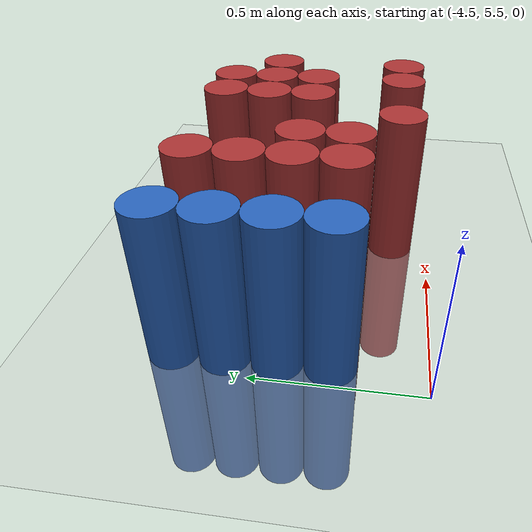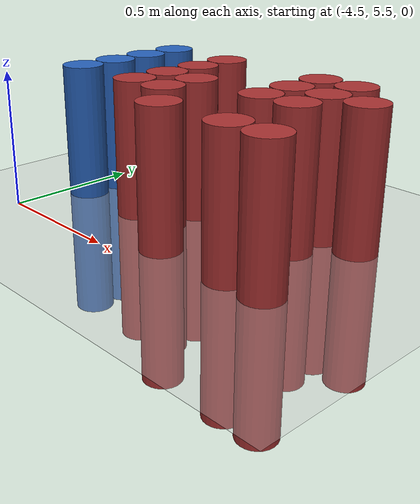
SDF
<sdf version="1.6">
 <world name="default">
  <model name="ground_plane">
   <static>1</static>
   <link name="link">
    <collision name="collision">
     <geometry><plane><normal>0 0 1</normal><size>100 100</size></plane></geometry>
     <surface><friction><ode><mu>100</mu><mu2>50</mu2></ode></friction></surface>
    </collision>
    <visual name="visual">
     <cast_shadows>0</cast_shadows>
     <geometry><plane><normal>0 0 1</normal><size>100 100</size></plane></geometry>
     <material>
      <script><uri>file://media/materials/scripts/gazebo.material</uri><name>Gazebo/Grey</name></script>
     </material>
    </visual>
   </link>
  </model>
  <model name="unit_cylinder_100">
   <static>1</static>
   <pose>-4.425000 5.775000 0.000000 0.000000 0.000000 0.000000</pose>
   <link name="link">
    <inertial>
     <mass>1</mass>
     <inertia><ixx>0.145833</ixx><ixy>0</ixy><ixz>0</ixz><iyy>0.145833</iyy><iyz>0</iyz><izz>0.125</izz></inertia>
    </inertial>
    <collision name="collision">
     <geometry><cylinder><radius>0.075000</radius><length>1</length></cylinder></geometry>
    </collision>
    <visual name="visual">
     <geometry><cylinder><radius>0.075000</radius><length>1</length></cylinder></geometry>
     <material>
      <ambient>0.152000 0.379000 0.720000 1</ambient>
      <diffuse>0.152000 0.379000 0.720000 1</diffuse>
     </material>
     <material>
      <script><name>Gazebo/Grey</name><uri>file://media/materials/scripts/gazebo.material</uri></script>
     </material>
    </visual>
    <sensor name="sensor_contact" type="contact"><contact><collision>collision</collision></contact></sensor>
   </link>
   <plugin filename="gz-sim-touchplugin-system" name="gz::sim::systems::TouchPlugin">
    <target>robot</target>
    <namespace>robot</namespace>
    <time>0.001</time>
    <enabled>true</enabled>
   </plugin>
  </model>
  <model name="unit_cylinder_101">
   <static>1</static>
   <pose>-4.425000 5.925000 0.000000 0.000000 0.000000 0.000000</pose>
   <link name="link">
    <inertial>
     <mass>1</mass>
     <inertia><ixx>0.145833</ixx><ixy>0</ixy><ixz>0</ixz><iyy>0.145833</iyy><iyz>0</iyz><izz>0.125</izz></inertia>
    </inertial>
    <collision name="collision">
     <geometry><cylinder><radius>0.075000</radius><length>1</length></cylinder></geometry>
    </collision>
    <visual name="visual">
     <geometry><cylinder><radius>0.075000</radius><length>1</length></cylinder></geometry>
     <material>
      <ambient>0.152000 0.379000 0.720000 1</ambient>
      <diffuse>0.152000 0.379000 0.720000 1</diffuse>
     </material>
     <material>
      <script><name>Gazebo/Grey</name><uri>file://media/materials/scripts/gazebo.material</uri></script>
     </material>
    </visual>
    <sensor name="sensor_contact" type="contact"><contact><collision>collision</collision></contact></sensor>
   </link>
   <plugin filename="gz-sim-touchplugin-system" name="gz::sim::systems::TouchPlugin">
    <target>robot</target>
    <namespace>robot</namespace>
    <time>0.001</time>
    <enabled>true</enabled>
   </plugin>
  </model>
  <model name="unit_cylinder_102">
   <static>1</static>
   <pose>-4.425000 6.075000 0.000000 0.000000 0.000000 0.000000</pose>
   <link name="link">
    <inertial>
     <mass>1</mass>
     <inertia><ixx>0.145833</ixx><ixy>0</ixy><ixz>0</ixz><iyy>0.145833</iyy><iyz>0</iyz><izz>0.125</izz></inertia>
    </inertial>
    <collision name="collision">
     <geometry><cylinder><radius>0.075000</radius><length>1</length></cylinder></geometry>
    </collision>
    <visual name="visual">
     <geometry><cylinder><radius>0.075000</radius><length>1</length></cylinder></geometry>
     <material>
      <ambient>0.152000 0.379000 0.720000 1</ambient>
      <diffuse>0.152000 0.379000 0.720000 1</diffuse>
     </material>
     <material>
      <script><name>Gazebo/Grey</name><uri>file://media/materials/scripts/gazebo.material</uri></script>
     </material>
    </visual>
    <sensor name="sensor_contact" type="contact"><contact><collision>collision</collision></contact></sensor>
   </link>
   <plugin filename="gz-sim-touchplugin-system" name="gz::sim::systems::TouchPlugin">
    <target>robot</target>
    <namespace>robot</namespace>
    <time>0.001</time>
    <enabled>true</enabled>
   </plugin>
  </model>
  <model name="unit_cylinder_103">
   <static>1</static>
   <pose>-4.425000 6.225000 0.000000 0.000000 0.000000 0.000000</pose>
   <link name="link">
    <inertial>
     <mass>1</mass>
     <inertia><ixx>0.145833</ixx><ixy>0</ixy><ixz>0</ixz><iyy>0.145833</iyy><iyz>0</iyz><izz>0.125</izz></inertia>
    </inertial>
    <collision name="collision">
     <geometry><cylinder><radius>0.075000</radius><length>1</length></cylinder></geometry>
    </collision>
    <visual name="visual">
     <geometry><cylinder><radius>0.075000</radius><length>1</length></cylinder></geometry>
     <material>
      <ambient>0.152000 0.379000 0.720000 1</ambient>
      <diffuse>0.152000 0.379000 0.720000 1</diffuse>
     </material>
     <material>
      <script><name>Gazebo/Grey</name><uri>file://media/materials/scripts/gazebo.material</uri></script>
     </material>
    </visual>
    <sensor name="sensor_contact" type="contact"><contact><collision>collision</collision></contact></sensor>
   </link>
   <plugin filename="gz-sim-touchplugin-system" name="gz::sim::systems::TouchPlugin">
    <target>robot</target>
    <namespace>robot</namespace>
    <time>0.001</time>
    <enabled>true</enabled>
   </plugin>
  </model>
  <model name="unit_cylinder_134">
   <static>1</static>
   <pose>-4.125000 5.775000 0.000000 0.000000 0.000000 0.000000</pose>
   <link name="link">
    <inertial>
     <mass>1</mass>
     <inertia><ixx>0.145833</ixx><ixy>0</ixy><ixz>0</ixz><iyy>0.145833</iyy><iyz>0</iyz><izz>0.125</izz></inertia>
    </inertial>
    <collision name="collision">
     <geometry><cylinder><radius>0.075000</radius><length>1</length></cylinder></geometry>
    </collision>
    <visual name="visual">
     <geometry><cylinder><radius>0.075000</radius><length>1</length></cylinder></geometry>
     <material>
      <ambient>0.648000 0.192000 0.192000 1</ambient>
      <diffuse>0.648000 0.192000 0.192000 1</diffuse>
     </material>
     <material>
      <script><name>Gazebo/Grey</name><uri>file://media/materials/scripts/gazebo.material</uri></script>
     </material>
    </visual>
    <sensor name="sensor_contact" type="contact"><contact><collision>collision</collision></contact></sensor>
   </link>
   <plugin filename="gz-sim-touchplugin-system" name="gz::sim::systems::TouchPlugin">
    <target>robot</target>
    <namespace>robot</namespace>
    <time>0.001</time>
    <enabled>true</enabled>
   </plugin>
  </model>
  <model name="unit_cylinder_135">
   <static>1</static>
   <pose>-4.125000 5.925000 0.000000 0.000000 0.000000 0.000000</pose>
   <link name="link">
    <inertial>
     <mass>1</mass>
     <inertia><ixx>0.145833</ixx><ixy>0</ixy><ixz>0</ixz><iyy>0.145833</iyy><iyz>0</iyz><izz>0.125</izz></inertia>
    </inertial>
    <collision name="collision">
     <geometry><cylinder><radius>0.075000</radius><length>1</length></cylinder></geometry>
    </collision>
    <visual name="visual">
     <geometry><cylinder><radius>0.075000</radius><length>1</length></cylinder></geometry>
     <material>
      <ambient>0.648000 0.192000 0.192000 1</ambient>
      <diffuse>0.648000 0.192000 0.192000 1</diffuse>
     </material>
     <material>
      <script><name>Gazebo/Grey</name><uri>file://media/materials/scripts/gazebo.material</uri></script>
     </material>
    </visual>
    <sensor name="sensor_contact" type="contact"><contact><collision>collision</collision></contact></sensor>
   </link>
   <plugin filename="gz-sim-touchplugin-system" name="gz::sim::systems::TouchPlugin">
    <target>robot</target>
    <namespace>robot</namespace>
    <time>0.001</time>
    <enabled>true</enabled>
   </plugin>
  </model>
  <model name="unit_cylinder_136">
   <static>1</static>
   <pose>-4.125000 6.075000 0.000000 0.000000 0.000000 0.000000</pose>
   <link name="link">
    <inertial>
     <mass>1</mass>
     <inertia><ixx>0.145833</ixx><ixy>0</ixy><ixz>0</ixz><iyy>0.145833</iyy><iyz>0</iyz><izz>0.125</izz></inertia>
    </inertial>
    <collision name="collision">
     <geometry><cylinder><radius>0.075000</radius><length>1</length></cylinder></geometry>
    </collision>
    <visual name="visual">
     <geometry><cylinder><radius>0.075000</radius><length>1</length></cylinder></geometry>
     <material>
      <ambient>0.648000 0.192000 0.192000 1</ambient>
      <diffuse>0.648000 0.192000 0.192000 1</diffuse>
     </material>
     <material>
      <script><name>Gazebo/Grey</name><uri>file://media/materials/scripts/gazebo.material</uri></script>
     </material>
    </visual>
    <sensor name="sensor_contact" type="contact"><contact><collision>collision</collision></contact></sensor>
   </link>
   <plugin filename="gz-sim-touchplugin-system" name="gz::sim::systems::TouchPlugin">
    <target>robot</target>
    <namespace>robot</namespace>
    <time>0.001</time>
    <enabled>true</enabled>
   </plugin>
  </model>
  <model name="unit_cylinder_137">
   <static>1</static>
   <pose>-4.125000 6.225000 0.000000 0.000000 0.000000 0.000000</pose>
   <link name="link">
    <inertial>
     <mass>1</mass>
     <inertia><ixx>0.145833</ixx><ixy>0</ixy><ixz>0</ixz><iyy>0.145833</iyy><iyz>0</iyz><izz>0.125</izz></inertia>
    </inertial>
    <collision name="collision">
     <geometry><cylinder><radius>0.075000</radius><length>1</length></cylinder></geometry>
    </collision>
    <visual name="visual">
     <geometry><cylinder><radius>0.075000</radius><length>1</length></cylinder></geometry>
     <material>
      <ambient>0.648000 0.192000 0.192000 1</ambient>
      <diffuse>0.648000 0.192000 0.192000 1</diffuse>
     </material>
     <material>
      <script><name>Gazebo/Grey</name><uri>file://media/materials/scripts/gazebo.material</uri></script>
     </material>
    </visual>
    <sensor name="sensor_contact" type="contact"><contact><collision>collision</collision></contact></sensor>
   </link>
   <plugin filename="gz-sim-touchplugin-system" name="gz::sim::systems::TouchPlugin">
    <target>robot</target>
    <namespace>robot</namespace>
    <time>0.001</time>
    <enabled>true</enabled>
   </plugin>
  </model>
  <model name="unit_cylinder_150">
   <static>1</static>
   <pose>-3.975000 5.775000 0.000000 0.000000 0.000000 0.000000</pose>
   <link name="link">
    <inertial>
     <mass>1</mass>
     <inertia><ixx>0.145833</ixx><ixy>0</ixy><ixz>0</ixz><iyy>0.145833</iyy><iyz>0</iyz><izz>0.125</izz></inertia>
    </inertial>
    <collision name="collision">
     <geometry><cylinder><radius>0.075000</radius><length>1</length></cylinder></geometry>
    </collision>
    <visual name="visual">
     <geometry><cylinder><radius>0.075000</radius><length>1</length></cylinder></geometry>
     <material>
      <ambient>0.648000 0.192000 0.192000 1</ambient>
      <diffuse>0.648000 0.192000 0.192000 1</diffuse>
     </material>
     <material>
      <script><name>Gazebo/Grey</name><uri>file://media/materials/scripts/gazebo.material</uri></script>
     </material>
    </visual>
    <sensor name="sensor_contact" type="contact"><contact><collision>collision</collision></contact></sensor>
   </link>
   <plugin filename="gz-sim-touchplugin-system" name="gz::sim::systems::TouchPlugin">
    <target>robot</target>
    <namespace>robot</namespace>
    <time>0.001</time>
    <enabled>true</enabled>
   </plugin>
  </model>
  <model name="unit_cylinder_151">
   <static>1</static>
   <pose>-3.975000 5.925000 0.000000 0.000000 0.000000 0.000000</pose>
   <link name="link">
    <inertial>
     <mass>1</mass>
     <inertia><ixx>0.145833</ixx><ixy>0</ixy><ixz>0</ixz><iyy>0.145833</iyy><iyz>0</iyz><izz>0.125</izz></inertia>
    </inertial>
    <collision name="collision">
     <geometry><cylinder><radius>0.075000</radius><length>1</length></cylinder></geometry>
    </collision>
    <visual name="visual">
     <geometry><cylinder><radius>0.075000</radius><length>1</length></cylinder></geometry>
     <material>
      <ambient>0.648000 0.192000 0.192000 1</ambient>
      <diffuse>0.648000 0.192000 0.192000 1</diffuse>
     </material>
     <material>
      <script><name>Gazebo/Grey</name><uri>file://media/materials/scripts/gazebo.material</uri></script>
     </material>
    </visual>
    <sensor name="sensor_contact" type="contact"><contact><collision>collision</collision></contact></sensor>
   </link>
   <plugin filename="gz-sim-touchplugin-system" name="gz::sim::systems::TouchPlugin">
    <target>robot</target>
    <namespace>robot</namespace>
    <time>0.001</time>
    <enabled>true</enabled>
   </plugin>
  </model>
  <model name="unit_cylinder_161">
   <static>1</static>
   <pose>-3.825000 5.625000 0.000000 0.000000 0.000000 0.000000</pose>
   <link name="link">
    <inertial>
     <mass>1</mass>
     <inertia><ixx>0.145833</ixx><ixy>0</ixy><ixz>0</ixz><iyy>0.145833</iyy><iyz>0</iyz><izz>0.125</izz></inertia>
    </inertial>
    <collision name="collision">
     <geometry><cylinder><radius>0.075000</radius><length>1</length></cylinder></geometry>
    </collision>
    <visual name="visual">
     <geometry><cylinder><radius>0.075000</radius><length>1</length></cylinder></geometry>
     <material>
      <ambient>0.648000 0.192000 0.192000 1</ambient>
      <diffuse>0.648000 0.192000 0.192000 1</diffuse>
     </material>
     <material>
      <script><name>Gazebo/Grey</name><uri>file://media/materials/scripts/gazebo.material</uri></script>
     </material>
    </visual>
    <sensor name="sensor_contact" type="contact"><contact><collision>collision</collision></contact></sensor>
   </link>
   <plugin filename="gz-sim-touchplugin-system" name="gz::sim::systems::TouchPlugin">
    <target>robot</target>
    <namespace>robot</namespace>
    <time>0.001</time>
    <enabled>true</enabled>
   </plugin>
  </model>
  <model name="unit_cylinder_170">
   <static>1</static>
   <pose>-3.675000 5.925000 0.000000 0.000000 0.000000 0.000000</pose>
   <link name="link">
    <inertial>
     <mass>1</mass>
     <inertia><ixx>0.145833</ixx><ixy>0</ixy><ixz>0</ixz><iyy>0.145833</iyy><iyz>0</iyz><izz>0.125</izz></inertia>
    </inertial>
    <collision name="collision">
     <geometry><cylinder><radius>0.075000</radius><length>1</length></cylinder></geometry>
    </collision>
    <visual name="visual">
     <geometry><cylinder><radius>0.075000</radius><length>1</length></cylinder></geometry>
     <material>
      <ambient>0.648000 0.192000 0.192000 1</ambient>
      <diffuse>0.648000 0.192000 0.192000 1</diffuse>
     </material>
     <material>
      <script><name>Gazebo/Grey</name><uri>file://media/materials/scripts/gazebo.material</uri></script>
     </material>
    </visual>
    <sensor name="sensor_contact" type="contact"><contact><collision>collision</collision></contact></sensor>
   </link>
   <plugin filename="gz-sim-touchplugin-system" name="gz::sim::systems::TouchPlugin">
    <target>robot</target>
    <namespace>robot</namespace>
    <time>0.001</time>
    <enabled>true</enabled>
   </plugin>
  </model>
  <model name="unit_cylinder_171">
   <static>1</static>
   <pose>-3.675000 6.075000 0.000000 0.000000 0.000000 0.000000</pose>
   <link name="link">
    <inertial>
     <mass>1</mass>
     <inertia><ixx>0.145833</ixx><ixy>0</ixy><ixz>0</ixz><iyy>0.145833</iyy><iyz>0</iyz><izz>0.125</izz></inertia>
    </inertial>
    <collision name="collision">
     <geometry><cylinder><radius>0.075000</radius><length>1</length></cylinder></geometry>
    </collision>
    <visual name="visual">
     <geometry><cylinder><radius>0.075000</radius><length>1</length></cylinder></geometry>
     <material>
      <ambient>0.648000 0.192000 0.192000 1</ambient>
      <diffuse>0.648000 0.192000 0.192000 1</diffuse>
     </material>
     <material>
      <script><name>Gazebo/Grey</name><uri>file://media/materials/scripts/gazebo.material</uri></script>
     </material>
    </visual>
    <sensor name="sensor_contact" type="contact"><contact><collision>collision</collision></contact></sensor>
   </link>
   <plugin filename="gz-sim-touchplugin-system" name="gz::sim::systems::TouchPlugin">
    <target>robot</target>
    <namespace>robot</namespace>
    <time>0.001</time>
    <enabled>true</enabled>
   </plugin>
  </model>
  <model name="unit_cylinder_172">
   <static>1</static>
   <pose>-3.675000 6.225000 0.000000 0.000000 0.000000 0.000000</pose>
   <link name="link">
    <inertial>
     <mass>1</mass>
     <inertia><ixx>0.145833</ixx><ixy>0</ixy><ixz>0</ixz><iyy>0.145833</iyy><iyz>0</iyz><izz>0.125</izz></inertia>
    </inertial>
    <collision name="collision">
     <geometry><cylinder><radius>0.075000</radius><length>1</length></cylinder></geometry>
    </collision>
    <visual name="visual">
     <geometry><cylinder><radius>0.075000</radius><length>1</length></cylinder></geometry>
     <material>
      <ambient>0.648000 0.192000 0.192000 1</ambient>
      <diffuse>0.648000 0.192000 0.192000 1</diffuse>
     </material>
     <material>
      <script><name>Gazebo/Grey</name><uri>file://media/materials/scripts/gazebo.material</uri></script>
     </material>
    </visual>
    <sensor name="sensor_contact" type="contact"><contact><collision>collision</collision></contact></sensor>
   </link>
   <plugin filename="gz-sim-touchplugin-system" name="gz::sim::systems::TouchPlugin">
    <target>robot</target>
    <namespace>robot</namespace>
    <time>0.001</time>
    <enabled>true</enabled>
   </plugin>
  </model>
  <model name="unit_cylinder_175">
   <static>1</static>
   <pose>-3.525000 5.625000 0.000000 0.000000 0.000000 0.000000</pose>
   <link name="link">
    <inertial>
     <mass>1</mass>
     <inertia><ixx>0.145833</ixx><ixy>0</ixy><ixz>0</ixz><iyy>0.145833</iyy><iyz>0</iyz><izz>0.125</izz></inertia>
    </inertial>
    <collision name="collision">
     <geometry><cylinder><radius>0.075000</radius><length>1</length></cylinder></geometry>
    </collision>
    <visual name="visual">
     <geometry><cylinder><radius>0.075000</radius><length>1</length></cylinder></geometry>
     <material>
      <ambient>0.648000 0.192000 0.192000 1</ambient>
      <diffuse>0.648000 0.192000 0.192000 1</diffuse>
     </material>
     <material>
      <script><name>Gazebo/Grey</name><uri>file://media/materials/scripts/gazebo.material</uri></script>
     </material>
    </visual>
    <sensor name="sensor_contact" type="contact"><contact><collision>collision</collision></contact></sensor>
   </link>
   <plugin filename="gz-sim-touchplugin-system" name="gz::sim::systems::TouchPlugin">
    <target>robot</target>
    <namespace>robot</namespace>
    <time>0.001</time>
    <enabled>true</enabled>
   </plugin>
  </model>
  <model name="unit_cylinder_176">
   <static>1</static>
   <pose>-3.525000 5.925000 0.000000 0.000000 0.000000 0.000000</pose>
   <link name="link">
    <inertial>
     <mass>1</mass>
     <inertia><ixx>0.145833</ixx><ixy>0</ixy><ixz>0</ixz><iyy>0.145833</iyy><iyz>0</iyz><izz>0.125</izz></inertia>
    </inertial>
    <collision name="collision">
     <geometry><cylinder><radius>0.075000</radius><length>1</length></cylinder></geometry>
    </collision>
    <visual name="visual">
     <geometry><cylinder><radius>0.075000</radius><length>1</length></cylinder></geometry>
     <material>
      <ambient>0.648000 0.192000 0.192000 1</ambient>
      <diffuse>0.648000 0.192000 0.192000 1</diffuse>
     </material>
     <material>
      <script><name>Gazebo/Grey</name><uri>file://media/materials/scripts/gazebo.material</uri></script>
     </material>
    </visual>
    <sensor name="sensor_contact" type="contact"><contact><collision>collision</collision></contact></sensor>
   </link>
   <plugin filename="gz-sim-touchplugin-system" name="gz::sim::systems::TouchPlugin">
    <target>robot</target>
    <namespace>robot</namespace>
    <time>0.001</time>
    <enabled>true</enabled>
   </plugin>
  </model>
  <model name="unit_cylinder_177">
   <static>1</static>
   <pose>-3.525000 6.075000 0.000000 0.000000 0.000000 0.000000</pose>
   <link name="link">
    <inertial>
     <mass>1</mass>
     <inertia><ixx>0.145833</ixx><ixy>0</ixy><ixz>0</ixz><iyy>0.145833</iyy><iyz>0</iyz><izz>0.125</izz></inertia>
    </inertial>
    <collision name="collision">
     <geometry><cylinder><radius>0.075000</radius><length>1</length></cylinder></geometry>
    </collision>
    <visual name="visual">
     <geometry><cylinder><radius>0.075000</radius><length>1</length></cylinder></geometry>
     <material>
      <ambient>0.648000 0.192000 0.192000 1</ambient>
      <diffuse>0.648000 0.192000 0.192000 1</diffuse>
     </material>
     <material>
      <script><name>Gazebo/Grey</name><uri>file://media/materials/scripts/gazebo.material</uri></script>
     </material>
    </visual>
    <sensor name="sensor_contact" type="contact"><contact><collision>collision</collision></contact></sensor>
   </link>
   <plugin filename="gz-sim-touchplugin-system" name="gz::sim::systems::TouchPlugin">
    <target>robot</target>
    <namespace>robot</namespace>
    <time>0.001</time>
    <enabled>true</enabled>
   </plugin>
  </model>
  <model name="unit_cylinder_178">
   <static>1</static>
   <pose>-3.525000 6.225000 0.000000 0.000000 0.000000 0.000000</pose>
   <link name="link">
    <inertial>
     <mass>1</mass>
     <inertia><ixx>0.145833</ixx><ixy>0</ixy><ixz>0</ixz><iyy>0.145833</iyy><iyz>0</iyz><izz>0.125</izz></inertia>
    </inertial>
    <collision name="collision">
     <geometry><cylinder><radius>0.075000</radius><length>1</length></cylinder></geometry>
    </collision>
    <visual name="visual">
     <geometry><cylinder><radius>0.075000</radius><length>1</length></cylinder></geometry>
     <material>
      <ambient>0.648000 0.192000 0.192000 1</ambient>
      <diffuse>0.648000 0.192000 0.192000 1</diffuse>
     </material>
     <material>
      <script><name>Gazebo/Grey</name><uri>file://media/materials/scripts/gazebo.material</uri></script>
     </material>
    </visual>
    <sensor name="sensor_contact" type="contact"><contact><collision>collision</collision></contact></sensor>
   </link>
   <plugin filename="gz-sim-touchplugin-system" name="gz::sim::systems::TouchPlugin">
    <target>robot</target>
    <namespace>robot</namespace>
    <time>0.001</time>
    <enabled>true</enabled>
   </plugin>
  </model>
  <model name="unit_cylinder_182">
   <static>1</static>
   <pose>-3.375000 5.625000 0.000000 0.000000 0.000000 0.000000</pose>
   <link name="link">
    <inertial>
     <mass>1</mass>
     <inertia><ixx>0.145833</ixx><ixy>0</ixy><ixz>0</ixz><iyy>0.145833</iyy><iyz>0</iyz><izz>0.125</izz></inertia>
    </inertial>
    <collision name="collision">
     <geometry><cylinder><radius>0.075000</radius><length>1</length></cylinder></geometry>
    </collision>
    <visual name="visual">
     <geometry><cylinder><radius>0.075000</radius><length>1</length></cylinder></geometry>
     <material>
      <ambient>0.648000 0.192000 0.192000 1</ambient>
      <diffuse>0.648000 0.192000 0.192000 1</diffuse>
     </material>
     <material>
      <script><name>Gazebo/Grey</name><uri>file://media/materials/scripts/gazebo.material</uri></script>
     </material>
    </visual>
    <sensor name="sensor_contact" type="contact"><contact><collision>collision</collision></contact></sensor>
   </link>
   <plugin filename="gz-sim-touchplugin-system" name="gz::sim::systems::TouchPlugin">
    <target>robot</target>
    <namespace>robot</namespace>
    <time>0.001</time>
    <enabled>true</enabled>
   </plugin>
  </model>
  <model name="unit_cylinder_183">
   <static>1</static>
   <pose>-3.375000 6.075000 0.000000 0.000000 0.000000 0.000000</pose>
   <link name="link">
    <inertial>
     <mass>1</mass>
     <inertia><ixx>0.145833</ixx><ixy>0</ixy><ixz>0</ixz><iyy>0.145833</iyy><iyz>0</iyz><izz>0.125</izz></inertia>
    </inertial>
    <collision name="collision">
     <geometry><cylinder><radius>0.075000</radius><length>1</length></cylinder></geometry>
    </collision>
    <visual name="visual">
     <geometry><cylinder><radius>0.075000</radius><length>1</length></cylinder></geometry>
     <material>
      <ambient>0.648000 0.192000 0.192000 1</ambient>
      <diffuse>0.648000 0.192000 0.192000 1</diffuse>
     </material>
     <material>
      <script><name>Gazebo/Grey</name><uri>file://media/materials/scripts/gazebo.material</uri></script>
     </material>
    </visual>
    <sensor name="sensor_contact" type="contact"><contact><collision>collision</collision></contact></sensor>
   </link>
   <plugin filename="gz-sim-touchplugin-system" name="gz::sim::systems::TouchPlugin">
    <target>robot</target>
    <namespace>robot</namespace>
    <time>0.001</time>
    <enabled>true</enabled>
   </plugin>
  </model>
 </world>
</sdf>
